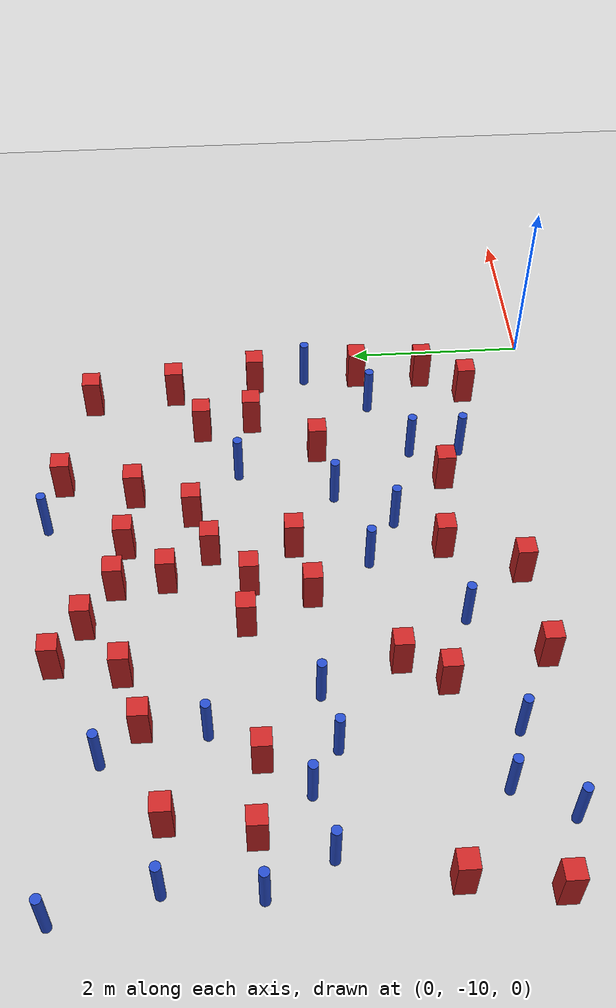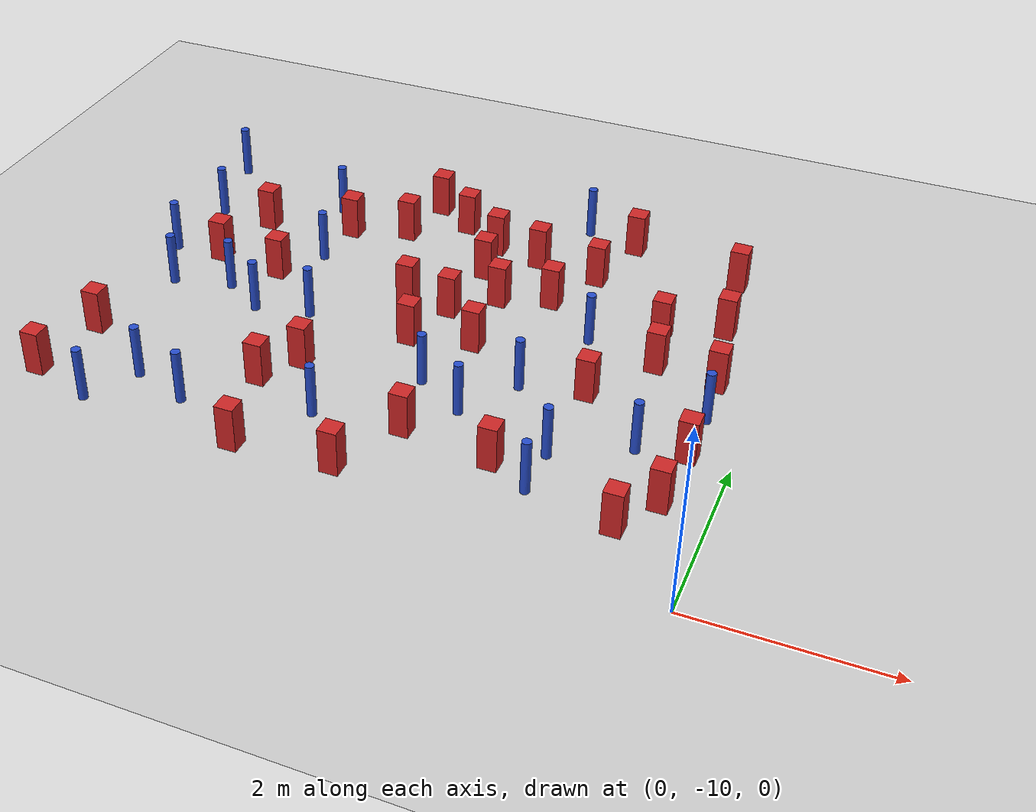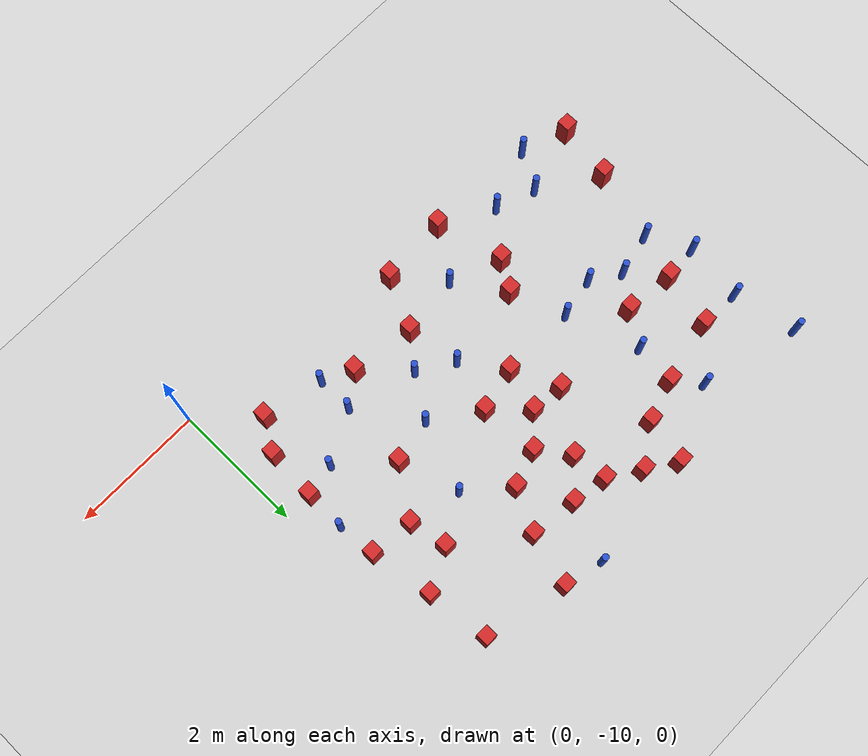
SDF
<sdf version="1.6">
 <world name="default">
  <model name="ground_plane">
   <static>1</static>
   <link name="link">
    <collision name="collision">
     <geometry><plane><normal>0 0 1</normal><size>100 100</size></plane></geometry>
     <surface><friction><ode><mu>100</mu><mu2>50</mu2></ode></friction></surface>
    </collision>
    <visual name="visual">
     <cast_shadows>0</cast_shadows>
     <geometry><plane><normal>0 0 1</normal><size>100 100</size></plane></geometry>
     <material>
      <ambient>1.0 1.0 1.0 1.0</ambient>
      <diffuse>0.8 0.8 0.8 1.0</diffuse>
      <specular>0.01 0.01 0.01 1.000000</specular>
     </material>
    </visual>
   </link>
  </model>
  <model name="pole_obstacle0">
   <static>true</static>
   <pose>-6.29073102385 -9.41656100264 2.88873142074e-08 -9.9053668967e-09 4.60219948993e-07 -1.20965994957e-07</pose>
   <link name="link">
    <pose>0 0 0.3 0 -0 0</pose>
    <inertial>
     <mass>1</mass>
     <inertia><ixx>0.145833</ixx><ixy>0</ixy><ixz>0</ixz><iyy>0.145833</iyy><iyz>0</iyz><izz>0.125</izz></inertia>
    </inertial>
    <collision name="collision">
     <geometry><cylinder><radius>0.05</radius><length>.6</length></cylinder></geometry>
    </collision>
    <visual name="visual">
     <geometry><cylinder><radius>0.05</radius><length>.6</length></cylinder></geometry>
     <material>
      <script><name>Gazebo/Blue</name><uri>file://media/materials/scripts/gazebo.material</uri></script>
     </material>
    </visual>
   </link>
  </model>
  <model name="pole_obstacle5">
   <static>true</static>
   <pose>-6.77612854679 -5.65401270305 2.88873142074e-08 -9.90536690842e-09 4.60219948965e-07 -1.20965994976e-07</pose>
   <link name="link">
    <pose>0 0 0.3 0 -0 0</pose>
    <inertial>
     <mass>1</mass>
     <inertia><ixx>0.145833</ixx><ixy>0</ixy><ixz>0</ixz><iyy>0.145833</iyy><iyz>0</iyz><izz>0.125</izz></inertia>
    </inertial>
    <collision name="collision">
     <geometry><cylinder><radius>0.05</radius><length>.6</length></cylinder></geometry>
    </collision>
    <visual name="visual">
     <geometry><cylinder><radius>0.05</radius><length>.6</length></cylinder></geometry>
     <material>
      <script><name>Gazebo/Blue</name><uri>file://media/materials/scripts/gazebo.material</uri></script>
     </material>
    </visual>
   </link>
  </model>
  <model name="pole_obstacle7">
   <static>true</static>
   <pose>-4.8611476765 -7.20057971057 2.88873142074e-08 -9.90536690842e-09 4.60219948965e-07 -1.20965994976e-07</pose>
   <link name="link">
    <pose>0 0 0.3 0 -0 0</pose>
    <inertial>
     <mass>1</mass>
     <inertia><ixx>0.145833</ixx><ixy>0</ixy><ixz>0</ixz><iyy>0.145833</iyy><iyz>0</iyz><izz>0.125</izz></inertia>
    </inertial>
    <collision name="collision">
     <geometry><cylinder><radius>0.05</radius><length>.6</length></cylinder></geometry>
    </collision>
    <visual name="visual">
     <geometry><cylinder><radius>0.05</radius><length>.6</length></cylinder></geometry>
     <material>
      <script><name>Gazebo/Blue</name><uri>file://media/materials/scripts/gazebo.material</uri></script>
     </material>
    </visual>
   </link>
  </model>
  <model name="square_post_obstacle17">
   <static>true</static>
   <pose>-1.99308941431 -4.56130783351 8.22691968438e-08 7.2212513382e-06 -7.54495500217e-07 2.29674213826e-05</pose>
   <link name="link">
    <pose>0 0 0.25 0 -0 0</pose>
    <inertial>
     <mass>100</mass>
     <inertia>
      <ixx>0.166667</ixx>
      <ixy>0</ixy>
      <ixz>0</ixz>
      <iyy>0.166667</iyy>
      <iyz>0</iyz>
      <izz>0.166667</izz>
     </inertia>
    </inertial>
    <collision name="collision"><geometry><box><size>.2 .2 .5</size></box></geometry></collision>
    <visual name="visual">
     <geometry><box><size>.2 .2 .5</size></box></geometry>
     <material>
      <script><name>Gazebo/Red</name><uri>file://media/materials/scripts/gazebo.material</uri></script>
     </material>
    </visual>
   </link>
  </model>
  <model name="square_post_obstacle21">
   <static>true</static>
   <pose>-0.484145209012 -8.73225161727 8.22691968438e-08 7.22125133819e-06 -7.54495500217e-07 2.29674213826e-05</pose>
   <link name="link">
    <pose>0 0 0.25 0 -0 0</pose>
    <inertial>
     <mass>100</mass>
     <inertia>
      <ixx>0.166667</ixx>
      <ixy>0</ixy>
      <ixz>0</ixz>
      <iyy>0.166667</iyy>
      <iyz>0</iyz>
      <izz>0.166667</izz>
     </inertia>
    </inertial>
    <collision name="collision"><geometry><box><size>.2 .2 .5</size></box></geometry></collision>
    <visual name="visual">
     <geometry><box><size>.2 .2 .5</size></box></geometry>
     <material>
      <script><name>Gazebo/Red</name><uri>file://media/materials/scripts/gazebo.material</uri></script>
     </material>
    </visual>
   </link>
  </model>
  <model name="pole_obstacle30">
   <static>true</static>
   <pose>-5.4791398422 -5.07729649423 2.88873142074e-08 -9.90536690842e-09 4.60219948965e-07 -1.20965994976e-07</pose>
   <link name="link">
    <pose>0 0 0.3 0 -0 0</pose>
    <inertial>
     <mass>1</mass>
     <inertia><ixx>0.145833</ixx><ixy>0</ixy><ixz>0</ixz><iyy>0.145833</iyy><iyz>0</iyz><izz>0.125</izz></inertia>
    </inertial>
    <collision name="collision">
     <geometry><cylinder><radius>0.05</radius><length>.6</length></cylinder></geometry>
    </collision>
    <visual name="visual">
     <geometry><cylinder><radius>0.05</radius><length>.6</length></cylinder></geometry>
     <material>
      <script><name>Gazebo/Blue</name><uri>file://media/materials/scripts/gazebo.material</uri></script>
     </material>
    </visual>
   </link>
  </model>
  <model name="pole_obstacle50">
   <static>true</static>
   <pose>-5.46237026579 -7.31988556952 2.88873142074e-08 -9.90536690842e-09 4.60219948965e-07 -1.20965994976e-07</pose>
   <link name="link">
    <pose>0 0 0.3 0 -0 0</pose>
    <inertial>
     <mass>1</mass>
     <inertia><ixx>0.145833</ixx><ixy>0</ixy><ixz>0</ixz><iyy>0.145833</iyy><iyz>0</iyz><izz>0.125</izz></inertia>
    </inertial>
    <collision name="collision">
     <geometry><cylinder><radius>0.05</radius><length>.6</length></cylinder></geometry>
    </collision>
    <visual name="visual">
     <geometry><cylinder><radius>0.05</radius><length>.6</length></cylinder></geometry>
     <material>
      <script><name>Gazebo/Blue</name><uri>file://media/materials/scripts/gazebo.material</uri></script>
     </material>
    </visual>
   </link>
  </model>
  <model name="pole_obstacle57">
   <static>true</static>
   <pose>-5.23125611805 -6.09782086094 2.88873142074e-08 -9.90536690842e-09 4.60219948965e-07 -1.20965994976e-07</pose>
   <link name="link">
    <pose>0 0 0.3 0 -0 0</pose>
    <inertial>
     <mass>1</mass>
     <inertia><ixx>0.145833</ixx><ixy>0</ixy><ixz>0</ixz><iyy>0.145833</iyy><iyz>0</iyz><izz>0.125</izz></inertia>
    </inertial>
    <collision name="collision">
     <geometry><cylinder><radius>0.05</radius><length>.6</length></cylinder></geometry>
    </collision>
    <visual name="visual">
     <geometry><cylinder><radius>0.05</radius><length>.6</length></cylinder></geometry>
     <material>
      <script><name>Gazebo/Blue</name><uri>file://media/materials/scripts/gazebo.material</uri></script>
     </material>
    </visual>
   </link>
  </model>
  <model name="pole_obstacle59">
   <static>true</static>
   <pose>-0.418445965042 -7.34145498809 2.88873142074e-08 -9.90536689683e-09 4.60219948993e-07 -1.20965994957e-07</pose>
   <link name="link">
    <pose>0 0 0.3 0 -0 0</pose>
    <inertial>
     <mass>1</mass>
     <inertia><ixx>0.145833</ixx><ixy>0</ixy><ixz>0</ixz><iyy>0.145833</iyy><iyz>0</iyz><izz>0.125</izz></inertia>
    </inertial>
    <collision name="collision">
     <geometry><cylinder><radius>0.05</radius><length>.6</length></cylinder></geometry>
    </collision>
    <visual name="visual">
     <geometry><cylinder><radius>0.05</radius><length>.6</length></cylinder></geometry>
     <material>
      <script><name>Gazebo/Blue</name><uri>file://media/materials/scripts/gazebo.material</uri></script>
     </material>
    </visual>
   </link>
  </model>
  <model name="square_post_obstacle49">
   <static>true</static>
   <pose>-3.06312127579 -6.16454046251 8.22691968438e-08 7.2212513382e-06 -7.54495500217e-07 2.29674213826e-05</pose>
   <link name="link">
    <pose>0 0 0.25 0 -0 0</pose>
    <inertial>
     <mass>100</mass>
     <inertia>
      <ixx>0.166667</ixx>
      <ixy>0</ixy>
      <ixz>0</ixz>
      <iyy>0.166667</iyy>
      <iyz>0</iyz>
      <izz>0.166667</izz>
     </inertia>
    </inertial>
    <collision name="collision"><geometry><box><size>.2 .2 .5</size></box></geometry></collision>
    <visual name="visual">
     <geometry><box><size>.2 .2 .5</size></box></geometry>
     <material>
      <script><name>Gazebo/Red</name><uri>file://media/materials/scripts/gazebo.material</uri></script>
     </material>
    </visual>
   </link>
  </model>
  <model name="square_post_obstacle55">
   <static>true</static>
   <pose>-1.64114782729 -7.40068069484 8.22691968438e-08 7.2212513382e-06 -7.54495500217e-07 2.29674213826e-05</pose>
   <link name="link">
    <pose>0 0 0.25 0 -0 0</pose>
    <inertial>
     <mass>100</mass>
     <inertia>
      <ixx>0.166667</ixx>
      <ixy>0</ixy>
      <ixz>0</ixz>
      <iyy>0.166667</iyy>
      <iyz>0</iyz>
      <izz>0.166667</izz>
     </inertia>
    </inertial>
    <collision name="collision"><geometry><box><size>.2 .2 .5</size></box></geometry></collision>
    <visual name="visual">
     <geometry><box><size>.2 .2 .5</size></box></geometry>
     <material>
      <script><name>Gazebo/Red</name><uri>file://media/materials/scripts/gazebo.material</uri></script>
     </material>
    </visual>
   </link>
  </model>
  <model name="square_post_obstacle62">
   <static>true</static>
   <pose>-4.53002099947 -5.26884477887 8.22691968438e-08 7.2212513382e-06 -7.54495500217e-07 2.29674213826e-05</pose>
   <link name="link">
    <pose>0 0 0.25 0 -0 0</pose>
    <inertial>
     <mass>100</mass>
     <inertia>
      <ixx>0.166667</ixx>
      <ixy>0</ixy>
      <ixz>0</ixz>
      <iyy>0.166667</iyy>
      <iyz>0</iyz>
      <izz>0.166667</izz>
     </inertia>
    </inertial>
    <collision name="collision"><geometry><box><size>.2 .2 .5</size></box></geometry></collision>
    <visual name="visual">
     <geometry><box><size>.2 .2 .5</size></box></geometry>
     <material>
      <script><name>Gazebo/Red</name><uri>file://media/materials/scripts/gazebo.material</uri></script>
     </material>
    </visual>
   </link>
  </model>
  <model name="square_post_obstacle67">
   <static>true</static>
   <pose>-0.622892252882 -5.79786922547 8.22691968438e-08 7.2212513382e-06 -7.54495500217e-07 2.29674213826e-05</pose>
   <link name="link">
    <pose>0 0 0.25 0 -0 0</pose>
    <inertial>
     <mass>100</mass>
     <inertia>
      <ixx>0.166667</ixx>
      <ixy>0</ixy>
      <ixz>0</ixz>
      <iyy>0.166667</iyy>
      <iyz>0</iyz>
      <izz>0.166667</izz>
     </inertia>
    </inertial>
    <collision name="collision"><geometry><box><size>.2 .2 .5</size></box></geometry></collision>
    <visual name="visual">
     <geometry><box><size>.2 .2 .5</size></box></geometry>
     <material>
      <script><name>Gazebo/Red</name><uri>file://media/materials/scripts/gazebo.material</uri></script>
     </material>
    </visual>
   </link>
  </model>
  <model name="square_post_obstacle68">
   <static>true</static>
   <pose>-2.51993758661 -5.97998340091 8.22691968438e-08 7.2212513382e-06 -7.54495500217e-07 2.29674213826e-05</pose>
   <link name="link">
    <pose>0 0 0.25 0 -0 0</pose>
    <inertial>
     <mass>100</mass>
     <inertia>
      <ixx>0.166667</ixx>
      <ixy>0</ixy>
      <ixz>0</ixz>
      <iyy>0.166667</iyy>
      <iyz>0</iyz>
      <izz>0.166667</izz>
     </inertia>
    </inertial>
    <collision name="collision"><geometry><box><size>.2 .2 .5</size></box></geometry></collision>
    <visual name="visual">
     <geometry><box><size>.2 .2 .5</size></box></geometry>
     <material>
      <script><name>Gazebo/Red</name><uri>file://media/materials/scripts/gazebo.material</uri></script>
     </material>
    </visual>
   </link>
  </model>
  <model name="pole_obstacle81">
   <static>true</static>
   <pose>-1.69824594226 -9.0235837593 2.88873142074e-08 -9.90536690474e-09 4.60219948974e-07 -1.2096599497e-07</pose>
   <link name="link">
    <pose>0 0 0.3 0 -0 0</pose>
    <inertial>
     <mass>1</mass>
     <inertia><ixx>0.145833</ixx><ixy>0</ixy><ixz>0</ixz><iyy>0.145833</iyy><iyz>0</iyz><izz>0.125</izz></inertia>
    </inertial>
    <collision name="collision">
     <geometry><cylinder><radius>0.05</radius><length>.6</length></cylinder></geometry>
    </collision>
    <visual name="visual">
     <geometry><cylinder><radius>0.05</radius><length>.6</length></cylinder></geometry>
     <material>
      <script><name>Gazebo/Blue</name><uri>file://media/materials/scripts/gazebo.material</uri></script>
     </material>
    </visual>
   </link>
  </model>
  <model name="square_post_obstacle71">
   <static>true</static>
   <pose>-6.31438875868 -6.52037185563 8.22691968438e-08 7.2212513382e-06 -7.54495500217e-07 2.29674213826e-05</pose>
   <link name="link">
    <pose>0 0 0.25 0 -0 0</pose>
    <inertial>
     <mass>100</mass>
     <inertia>
      <ixx>0.166667</ixx>
      <ixy>0</ixy>
      <ixz>0</ixz>
      <iyy>0.166667</iyy>
      <iyz>0</iyz>
      <izz>0.166667</izz>
     </inertia>
    </inertial>
    <collision name="collision"><geometry><box><size>.2 .2 .5</size></box></geometry></collision>
    <visual name="visual">
     <geometry><box><size>.2 .2 .5</size></box></geometry>
     <material>
      <script><name>Gazebo/Red</name><uri>file://media/materials/scripts/gazebo.material</uri></script>
     </material>
    </visual>
   </link>
  </model>
  <model name="pole_obstacle83">
   <static>true</static>
   <pose>-1.68898242239 -8.4609062374 2.88873142074e-08 -9.90536690474e-09 4.60219948974e-07 -1.2096599497e-07</pose>
   <link name="link">
    <pose>0 0 0.3 0 -0 0</pose>
    <inertial>
     <mass>1</mass>
     <inertia><ixx>0.145833</ixx><ixy>0</ixy><ixz>0</ixz><iyy>0.145833</iyy><iyz>0</iyz><izz>0.125</izz></inertia>
    </inertial>
    <collision name="collision">
     <geometry><cylinder><radius>0.05</radius><length>.6</length></cylinder></geometry>
    </collision>
    <visual name="visual">
     <geometry><cylinder><radius>0.05</radius><length>.6</length></cylinder></geometry>
     <material>
      <script><name>Gazebo/Blue</name><uri>file://media/materials/scripts/gazebo.material</uri></script>
     </material>
    </visual>
   </link>
  </model>
  <model name="square_post_obstacle81">
   <static>true</static>
   <pose>-0.735373230694 -4.84732503694 8.22691968438e-08 7.2212513382e-06 -7.54495500217e-07 2.29674213826e-05</pose>
   <link name="link">
    <pose>0 0 0.25 0 -0 0</pose>
    <inertial>
     <mass>100</mass>
     <inertia>
      <ixx>0.166667</ixx>
      <ixy>0</ixy>
      <ixz>0</ixz>
      <iyy>0.166667</iyy>
      <iyz>0</iyz>
      <izz>0.166667</izz>
     </inertia>
    </inertial>
    <collision name="collision"><geometry><box><size>.2 .2 .5</size></box></geometry></collision>
    <visual name="visual">
     <geometry><box><size>.2 .2 .5</size></box></geometry>
     <material>
      <script><name>Gazebo/Red</name><uri>file://media/materials/scripts/gazebo.material</uri></script>
     </material>
    </visual>
   </link>
  </model>
  <model name="pole_obstacle91">
   <static>true</static>
   <pose>-6.55088212023 -7.19299175818 2.88873142074e-08 -9.90536690842e-09 4.60219948965e-07 -1.20965994976e-07</pose>
   <link name="link">
    <pose>0 0 0.3 0 -0 0</pose>
    <inertial>
     <mass>1</mass>
     <inertia><ixx>0.145833</ixx><ixy>0</ixy><ixz>0</ixz><iyy>0.145833</iyy><iyz>0</iyz><izz>0.125</izz></inertia>
    </inertial>
    <collision name="collision">
     <geometry><cylinder><radius>0.05</radius><length>.6</length></cylinder></geometry>
    </collision>
    <visual name="visual">
     <geometry><cylinder><radius>0.05</radius><length>.6</length></cylinder></geometry>
     <material>
      <script><name>Gazebo/Blue</name><uri>file://media/materials/scripts/gazebo.material</uri></script>
     </material>
    </visual>
   </link>
  </model>
  <model name="square_post_obstacle85">
   <static>true</static>
   <pose>-3.46423180402 -5.17242783229 8.22691968438e-08 7.2212513382e-06 -7.54495500217e-07 2.29674213826e-05</pose>
   <link name="link">
    <pose>0 0 0.25 0 -0 0</pose>
    <inertial>
     <mass>100</mass>
     <inertia>
      <ixx>0.166667</ixx>
      <ixy>0</ixy>
      <ixz>0</ixz>
      <iyy>0.166667</iyy>
      <iyz>0</iyz>
      <izz>0.166667</izz>
     </inertia>
    </inertial>
    <collision name="collision"><geometry><box><size>.2 .2 .5</size></box></geometry></collision>
    <visual name="visual">
     <geometry><box><size>.2 .2 .5</size></box></geometry>
     <material>
      <script><name>Gazebo/Red</name><uri>file://media/materials/scripts/gazebo.material</uri></script>
     </material>
    </visual>
   </link>
  </model>
  <model name="pole_obstacle92">
   <static>true</static>
   <pose>-1.9193842892 -6.5033477845 2.88873142074e-08 -9.90536689852e-09 4.60219948989e-07 -1.2096599496e-07</pose>
   <link name="link">
    <pose>0 0 0.3 0 -0 0</pose>
    <inertial>
     <mass>1</mass>
     <inertia><ixx>0.145833</ixx><ixy>0</ixy><ixz>0</ixz><iyy>0.145833</iyy><iyz>0</iyz><izz>0.125</izz></inertia>
    </inertial>
    <collision name="collision">
     <geometry><cylinder><radius>0.05</radius><length>.6</length></cylinder></geometry>
    </collision>
    <visual name="visual">
     <geometry><cylinder><radius>0.05</radius><length>.6</length></cylinder></geometry>
     <material>
      <script><name>Gazebo/Blue</name><uri>file://media/materials/scripts/gazebo.material</uri></script>
     </material>
    </visual>
   </link>
  </model>
  <model name="square_post_obstacle93">
   <static>true</static>
   <pose>-1.13325996723 -6.67975821291 8.22691968438e-08 7.2212513382e-06 -7.54495500217e-07 2.29674213826e-05</pose>
   <link name="link">
    <pose>0 0 0.25 0 -0 0</pose>
    <inertial>
     <mass>100</mass>
     <inertia>
      <ixx>0.166667</ixx>
      <ixy>0</ixy>
      <ixz>0</ixz>
      <iyy>0.166667</iyy>
      <iyz>0</iyz>
      <izz>0.166667</izz>
     </inertia>
    </inertial>
    <collision name="collision"><geometry><box><size>.2 .2 .5</size></box></geometry></collision>
    <visual name="visual">
     <geometry><box><size>.2 .2 .5</size></box></geometry>
     <material>
      <script><name>Gazebo/Red</name><uri>file://media/materials/scripts/gazebo.material</uri></script>
     </material>
    </visual>
   </link>
  </model>
  <model name="pole_obstacle103">
   <static>true</static>
   <pose>-5.36653281335 -9.06848927768 2.88873142074e-08 -9.9053668967e-09 4.60219948993e-07 -1.20965994957e-07</pose>
   <link name="link">
    <pose>0 0 0.3 0 -0 0</pose>
    <inertial>
     <mass>1</mass>
     <inertia><ixx>0.145833</ixx><ixy>0</ixy><ixz>0</ixz><iyy>0.145833</iyy><iyz>0</iyz><izz>0.125</izz></inertia>
    </inertial>
    <collision name="collision">
     <geometry><cylinder><radius>0.05</radius><length>.6</length></cylinder></geometry>
    </collision>
    <visual name="visual">
     <geometry><cylinder><radius>0.05</radius><length>.6</length></cylinder></geometry>
     <material>
      <script><name>Gazebo/Blue</name><uri>file://media/materials/scripts/gazebo.material</uri></script>
     </material>
    </visual>
   </link>
  </model>
  <model name="square_post_obstacle99">
   <static>true</static>
   <pose>-2.92409832738 -5.26188851214 8.22691968438e-08 7.22125133819e-06 -7.54495500217e-07 2.29674213826e-05</pose>
   <link name="link">
    <pose>0 0 0.25 0 -0 0</pose>
    <inertial>
     <mass>100</mass>
     <inertia>
      <ixx>0.166667</ixx>
      <ixy>0</ixy>
      <ixz>0</ixz>
      <iyy>0.166667</iyy>
      <iyz>0</iyz>
      <izz>0.166667</izz>
     </inertia>
    </inertial>
    <collision name="collision"><geometry><box><size>.2 .2 .5</size></box></geometry></collision>
    <visual name="visual">
     <geometry><box><size>.2 .2 .5</size></box></geometry>
     <material>
      <script><name>Gazebo/Red</name><uri>file://media/materials/scripts/gazebo.material</uri></script>
     </material>
    </visual>
   </link>
  </model>
  <model name="pole_obstacle111">
   <static>true</static>
   <pose>-4.0502593957 -8.75332816212 2.88873142074e-08 -9.9053668967e-09 4.60219948993e-07 -1.20965994957e-07</pose>
   <link name="link">
    <pose>0 0 0.3 0 -0 0</pose>
    <inertial>
     <mass>1</mass>
     <inertia><ixx>0.145833</ixx><ixy>0</ixy><ixz>0</ixz><iyy>0.145833</iyy><iyz>0</iyz><izz>0.125</izz></inertia>
    </inertial>
    <collision name="collision">
     <geometry><cylinder><radius>0.05</radius><length>.6</length></cylinder></geometry>
    </collision>
    <visual name="visual">
     <geometry><cylinder><radius>0.05</radius><length>.6</length></cylinder></geometry>
     <material>
      <script><name>Gazebo/Blue</name><uri>file://media/materials/scripts/gazebo.material</uri></script>
     </material>
    </visual>
   </link>
  </model>
  <model name="square_post_obstacle116">
   <static>true</static>
   <pose>-3.01341885197 -7.05202890822 8.22691968438e-08 7.2212513382e-06 -7.54495500217e-07 2.29674213826e-05</pose>
   <link name="link">
    <pose>0 0 0.25 0 -0 0</pose>
    <inertial>
     <mass>100</mass>
     <inertia>
      <ixx>0.166667</ixx>
      <ixy>0</ixy>
      <ixz>0</ixz>
      <iyy>0.166667</iyy>
      <iyz>0</iyz>
      <izz>0.166667</izz>
     </inertia>
    </inertial>
    <collision name="collision"><geometry><box><size>.2 .2 .5</size></box></geometry></collision>
    <visual name="visual">
     <geometry><box><size>.2 .2 .5</size></box></geometry>
     <material>
      <script><name>Gazebo/Red</name><uri>file://media/materials/scripts/gazebo.material</uri></script>
     </material>
    </visual>
   </link>
  </model>
  <model name="square_post_obstacle119">
   <static>true</static>
   <pose>-0.468756562765 -6.74823517555 8.22691968438e-08 7.22125133819e-06 -7.54495500217e-07 2.29674213826e-05</pose>
   <link name="link">
    <pose>0 0 0.25 0 -0 0</pose>
    <inertial>
     <mass>100</mass>
     <inertia>
      <ixx>0.166667</ixx>
      <ixy>0</ixy>
      <ixz>0</ixz>
      <iyy>0.166667</iyy>
      <iyz>0</iyz>
      <izz>0.166667</izz>
     </inertia>
    </inertial>
    <collision name="collision"><geometry><box><size>.2 .2 .5</size></box></geometry></collision>
    <visual name="visual">
     <geometry><box><size>.2 .2 .5</size></box></geometry>
     <material>
      <script><name>Gazebo/Red</name><uri>file://media/materials/scripts/gazebo.material</uri></script>
     </material>
    </visual>
   </link>
  </model>
  <model name="square_post_obstacle121">
   <static>true</static>
   <pose>-3.11852874004 -8.64205245316 8.22691968438e-08 7.22125133819e-06 -7.54495500217e-07 2.29674213826e-05</pose>
   <link name="link">
    <pose>0 0 0.25 0 -0 0</pose>
    <inertial>
     <mass>100</mass>
     <inertia>
      <ixx>0.166667</ixx>
      <ixy>0</ixy>
      <ixz>0</ixz>
      <iyy>0.166667</iyy>
      <iyz>0</iyz>
      <izz>0.166667</izz>
     </inertia>
    </inertial>
    <collision name="collision"><geometry><box><size>.2 .2 .5</size></box></geometry></collision>
    <visual name="visual">
     <geometry><box><size>.2 .2 .5</size></box></geometry>
     <material>
      <script><name>Gazebo/Red</name><uri>file://media/materials/scripts/gazebo.material</uri></script>
     </material>
    </visual>
   </link>
  </model>
  <model name="pole_obstacle124">
   <static>true</static>
   <pose>-3.2590227834 -7.83962579985 2.88873142074e-08 -9.90536692062e-09 4.60219948937e-07 -1.20965994985e-07</pose>
   <link name="link">
    <pose>0 0 0.3 0 -0 0</pose>
    <inertial>
     <mass>1</mass>
     <inertia><ixx>0.145833</ixx><ixy>0</ixy><ixz>0</ixz><iyy>0.145833</iyy><iyz>0</iyz><izz>0.125</izz></inertia>
    </inertial>
    <collision name="collision">
     <geometry><cylinder><radius>0.05</radius><length>.6</length></cylinder></geometry>
    </collision>
    <visual name="visual">
     <geometry><cylinder><radius>0.05</radius><length>.6</length></cylinder></geometry>
     <material>
      <script><name>Gazebo/Blue</name><uri>file://media/materials/scripts/gazebo.material</uri></script>
     </material>
    </visual>
   </link>
  </model>
  <model name="square_post_obstacle123">
   <static>true</static>
   <pose>-3.49625539113 -9.41938471389 8.22691968438e-08 7.22125133819e-06 -7.54495500217e-07 2.29674213826e-05</pose>
   <link name="link">
    <pose>0 0 0.25 0 -0 0</pose>
    <inertial>
     <mass>100</mass>
     <inertia>
      <ixx>0.166667</ixx>
      <ixy>0</ixy>
      <ixz>0</ixz>
      <iyy>0.166667</iyy>
      <iyz>0</iyz>
      <izz>0.166667</izz>
     </inertia>
    </inertial>
    <collision name="collision"><geometry><box><size>.2 .2 .5</size></box></geometry></collision>
    <visual name="visual">
     <geometry><box><size>.2 .2 .5</size></box></geometry>
     <material>
      <script><name>Gazebo/Red</name><uri>file://media/materials/scripts/gazebo.material</uri></script>
     </material>
    </visual>
   </link>
  </model>
  <model name="square_post_obstacle127">
   <static>true</static>
   <pose>-4.55464213423 -9.48271875091 8.22691968438e-08 7.22125133819e-06 -7.54495500217e-07 2.29674213826e-05</pose>
   <link name="link">
    <pose>0 0 0.25 0 -0 0</pose>
    <inertial>
     <mass>100</mass>
     <inertia>
      <ixx>0.166667</ixx>
      <ixy>0</ixy>
      <ixz>0</ixz>
      <iyy>0.166667</iyy>
      <iyz>0</iyz>
      <izz>0.166667</izz>
     </inertia>
    </inertial>
    <collision name="collision"><geometry><box><size>.2 .2 .5</size></box></geometry></collision>
    <visual name="visual">
     <geometry><box><size>.2 .2 .5</size></box></geometry>
     <material>
      <script><name>Gazebo/Red</name><uri>file://media/materials/scripts/gazebo.material</uri></script>
     </material>
    </visual>
   </link>
  </model>
  <model name="square_post_obstacle133">
   <static>true</static>
   <pose>-0.777890849978 -9.20719937548 8.22691968438e-08 7.22125133819e-06 -7.54495500217e-07 2.29674213826e-05</pose>
   <link name="link">
    <pose>0 0 0.25 0 -0 0</pose>
    <inertial>
     <mass>100</mass>
     <inertia>
      <ixx>0.166667</ixx>
      <ixy>0</ixy>
      <ixz>0</ixz>
      <iyy>0.166667</iyy>
      <iyz>0</iyz>
      <izz>0.166667</izz>
     </inertia>
    </inertial>
    <collision name="collision"><geometry><box><size>.2 .2 .5</size></box></geometry></collision>
    <visual name="visual">
     <geometry><box><size>.2 .2 .5</size></box></geometry>
     <material>
      <script><name>Gazebo/Red</name><uri>file://media/materials/scripts/gazebo.material</uri></script>
     </material>
    </visual>
   </link>
  </model>
  <model name="square_post_obstacle138">
   <static>true</static>
   <pose>-4.538817985 -8.01944577597 8.22691968438e-08 7.2212513382e-06 -7.54495500217e-07 2.29674213826e-05</pose>
   <link name="link">
    <pose>0 0 0.25 0 -0 0</pose>
    <inertial>
     <mass>100</mass>
     <inertia>
      <ixx>0.166667</ixx>
      <ixy>0</ixy>
      <ixz>0</ixz>
      <iyy>0.166667</iyy>
      <iyz>0</iyz>
      <izz>0.166667</izz>
     </inertia>
    </inertial>
    <collision name="collision"><geometry><box><size>.2 .2 .5</size></box></geometry></collision>
    <visual name="visual">
     <geometry><box><size>.2 .2 .5</size></box></geometry>
     <material>
      <script><name>Gazebo/Red</name><uri>file://media/materials/scripts/gazebo.material</uri></script>
     </material>
    </visual>
   </link>
  </model>
  <model name="square_post_obstacle139">
   <static>true</static>
   <pose>-6.13318079136 -5.68081853286 8.22691968438e-08 7.22125133819e-06 -7.54495500217e-07 2.29674213826e-05</pose>
   <link name="link">
    <pose>0 0 0.25 0 -0 0</pose>
    <inertial>
     <mass>100</mass>
     <inertia>
      <ixx>0.166667</ixx>
      <ixy>0</ixy>
      <ixz>0</ixz>
      <iyy>0.166667</iyy>
      <iyz>0</iyz>
      <izz>0.166667</izz>
     </inertia>
    </inertial>
    <collision name="collision"><geometry><box><size>.2 .2 .5</size></box></geometry></collision>
    <visual name="visual">
     <geometry><box><size>.2 .2 .5</size></box></geometry>
     <material>
      <script><name>Gazebo/Red</name><uri>file://media/materials/scripts/gazebo.material</uri></script>
     </material>
    </visual>
   </link>
  </model>
  <model name="pole_obstacle149">
   <static>true</static>
   <pose>-5.91405965367 -7.04005609515 2.88873142074e-08 -9.90536690842e-09 4.60219948965e-07 -1.20965994976e-07</pose>
   <link name="link">
    <pose>0 0 0.3 0 -0 0</pose>
    <inertial>
     <mass>1</mass>
     <inertia><ixx>0.145833</ixx><ixy>0</ixy><ixz>0</ixz><iyy>0.145833</iyy><iyz>0</iyz><izz>0.125</izz></inertia>
    </inertial>
    <collision name="collision">
     <geometry><cylinder><radius>0.05</radius><length>.6</length></cylinder></geometry>
    </collision>
    <visual name="visual">
     <geometry><cylinder><radius>0.05</radius><length>.6</length></cylinder></geometry>
     <material>
      <script><name>Gazebo/Blue</name><uri>file://media/materials/scripts/gazebo.material</uri></script>
     </material>
    </visual>
   </link>
  </model>
  <model name="square_post_obstacle145">
   <static>true</static>
   <pose>-5.15869156888 -5.46544525878 8.22691968438e-08 7.22125133819e-06 -7.54495500217e-07 2.29674213826e-05</pose>
   <link name="link">
    <pose>0 0 0.25 0 -0 0</pose>
    <inertial>
     <mass>100</mass>
     <inertia>
      <ixx>0.166667</ixx>
      <ixy>0</ixy>
      <ixz>0</ixz>
      <iyy>0.166667</iyy>
      <iyz>0</iyz>
      <izz>0.166667</izz>
     </inertia>
    </inertial>
    <collision name="collision"><geometry><box><size>.2 .2 .5</size></box></geometry></collision>
    <visual name="visual">
     <geometry><box><size>.2 .2 .5</size></box></geometry>
     <material>
      <script><name>Gazebo/Red</name><uri>file://media/materials/scripts/gazebo.material</uri></script>
     </material>
    </visual>
   </link>
  </model>
  <model name="square_post_obstacle150">
   <static>true</static>
   <pose>-2.14066113726 -8.78282673287 8.22691968438e-08 7.22125133819e-06 -7.54495500217e-07 2.29674213826e-05</pose>
   <link name="link">
    <pose>0 0 0.25 0 -0 0</pose>
    <inertial>
     <mass>100</mass>
     <inertia>
      <ixx>0.166667</ixx>
      <ixy>0</ixy>
      <ixz>0</ixz>
      <iyy>0.166667</iyy>
      <iyz>0</iyz>
      <izz>0.166667</izz>
     </inertia>
    </inertial>
    <collision name="collision"><geometry><box><size>.2 .2 .5</size></box></geometry></collision>
    <visual name="visual">
     <geometry><box><size>.2 .2 .5</size></box></geometry>
     <material>
      <script><name>Gazebo/Red</name><uri>file://media/materials/scripts/gazebo.material</uri></script>
     </material>
    </visual>
   </link>
  </model>
  <model name="square_post_obstacle151">
   <static>true</static>
   <pose>-3.68180055198 -7.202479845 8.22691968438e-08 7.22125133819e-06 -7.54495500217e-07 2.29674213826e-05</pose>
   <link name="link">
    <pose>0 0 0.25 0 -0 0</pose>
    <inertial>
     <mass>100</mass>
     <inertia>
      <ixx>0.166667</ixx>
      <ixy>0</ixy>
      <ixz>0</ixz>
      <iyy>0.166667</iyy>
      <iyz>0</iyz>
      <izz>0.166667</izz>
     </inertia>
    </inertial>
    <collision name="collision"><geometry><box><size>.2 .2 .5</size></box></geometry></collision>
    <visual name="visual">
     <geometry><box><size>.2 .2 .5</size></box></geometry>
     <material>
      <script><name>Gazebo/Red</name><uri>file://media/materials/scripts/gazebo.material</uri></script>
     </material>
    </visual>
   </link>
  </model>
  <model name="pole_obstacle159">
   <static>true</static>
   <pose>-2.31556478736 -7.54525956812 2.88873142074e-08 -9.90536689859e-09 4.60219948989e-07 -1.20965994961e-07</pose>
   <link name="link">
    <pose>0 0 0.3 0 -0 0</pose>
    <inertial>
     <mass>1</mass>
     <inertia><ixx>0.145833</ixx><ixy>0</ixy><ixz>0</ixz><iyy>0.145833</iyy><iyz>0</iyz><izz>0.125</izz></inertia>
    </inertial>
    <collision name="collision">
     <geometry><cylinder><radius>0.05</radius><length>.6</length></cylinder></geometry>
    </collision>
    <visual name="visual">
     <geometry><cylinder><radius>0.05</radius><length>.6</length></cylinder></geometry>
     <material>
      <script><name>Gazebo/Blue</name><uri>file://media/materials/scripts/gazebo.material</uri></script>
     </material>
    </visual>
   </link>
  </model>
  <model name="pole_obstacle164">
   <static>true</static>
   <pose>-2.7267406567 -8.1647301927 2.88873142074e-08 -9.90536692318e-09 4.6021994893e-07 -1.20965994988e-07</pose>
   <link name="link">
    <pose>0 0 0.3 0 -0 0</pose>
    <inertial>
     <mass>1</mass>
     <inertia><ixx>0.145833</ixx><ixy>0</ixy><ixz>0</ixz><iyy>0.145833</iyy><iyz>0</iyz><izz>0.125</izz></inertia>
    </inertial>
    <collision name="collision">
     <geometry><cylinder><radius>0.05</radius><length>.6</length></cylinder></geometry>
    </collision>
    <visual name="visual">
     <geometry><cylinder><radius>0.05</radius><length>.6</length></cylinder></geometry>
     <material>
      <script><name>Gazebo/Blue</name><uri>file://media/materials/scripts/gazebo.material</uri></script>
     </material>
    </visual>
   </link>
  </model>
  <model name="square_post_obstacle157">
   <static>true</static>
   <pose>-5.54997785436 -6.59602189619 8.22691968438e-08 7.2212513382e-06 -7.54495500217e-07 2.29674213826e-05</pose>
   <link name="link">
    <pose>0 0 0.25 0 -0 0</pose>
    <inertial>
     <mass>100</mass>
     <inertia>
      <ixx>0.166667</ixx>
      <ixy>0</ixy>
      <ixz>0</ixz>
      <iyy>0.166667</iyy>
      <iyz>0</iyz>
      <izz>0.166667</izz>
     </inertia>
    </inertial>
    <collision name="collision"><geometry><box><size>.2 .2 .5</size></box></geometry></collision>
    <visual name="visual">
     <geometry><box><size>.2 .2 .5</size></box></geometry>
     <material>
      <script><name>Gazebo/Red</name><uri>file://media/materials/scripts/gazebo.material</uri></script>
     </material>
    </visual>
   </link>
  </model>
  <model name="square_post_obstacle159">
   <static>true</static>
   <pose>-4.00118179782 -6.51103358357 8.22691968438e-08 7.22125133819e-06 -7.54495500217e-07 2.29674213826e-05</pose>
   <link name="link">
    <pose>0 0 0.25 0 -0 0</pose>
    <inertial>
     <mass>100</mass>
     <inertia>
      <ixx>0.166667</ixx>
      <ixy>0</ixy>
      <ixz>0</ixz>
      <iyy>0.166667</iyy>
      <iyz>0</iyz>
      <izz>0.166667</izz>
     </inertia>
    </inertial>
    <collision name="collision"><geometry><box><size>.2 .2 .5</size></box></geometry></collision>
    <visual name="visual">
     <geometry><box><size>.2 .2 .5</size></box></geometry>
     <material>
      <script><name>Gazebo/Red</name><uri>file://media/materials/scripts/gazebo.material</uri></script>
     </material>
    </visual>
   </link>
  </model>
  <model name="pole_obstacle166">
   <static>true</static>
   <pose>-0.928365991288 -8.05668016547 2.88873142074e-08 -9.90536690779e-09 4.60219948967e-07 -1.20965994975e-07</pose>
   <link name="link">
    <pose>0 0 0.3 0 -0 0</pose>
    <inertial>
     <mass>1</mass>
     <inertia><ixx>0.145833</ixx><ixy>0</ixy><ixz>0</ixz><iyy>0.145833</iyy><iyz>0</iyz><izz>0.125</izz></inertia>
    </inertial>
    <collision name="collision">
     <geometry><cylinder><radius>0.05</radius><length>.6</length></cylinder></geometry>
    </collision>
    <visual name="visual">
     <geometry><cylinder><radius>0.05</radius><length>.6</length></cylinder></geometry>
     <material>
      <script><name>Gazebo/Blue</name><uri>file://media/materials/scripts/gazebo.material</uri></script>
     </material>
    </visual>
   </link>
  </model>
  <model name="square_post_obstacle168">
   <static>true</static>
   <pose>-3.4054438377 -5.70733138829 8.22691968438e-08 7.2212513382e-06 -7.54495500217e-07 2.29674213826e-05</pose>
   <link name="link">
    <pose>0 0 0.25 0 -0 0</pose>
    <inertial>
     <mass>100</mass>
     <inertia>
      <ixx>0.166667</ixx>
      <ixy>0</ixy>
      <ixz>0</ixz>
      <iyy>0.166667</iyy>
      <iyz>0</iyz>
      <izz>0.166667</izz>
     </inertia>
    </inertial>
    <collision name="collision"><geometry><box><size>.2 .2 .5</size></box></geometry></collision>
    <visual name="visual">
     <geometry><box><size>.2 .2 .5</size></box></geometry>
     <material>
      <script><name>Gazebo/Red</name><uri>file://media/materials/scripts/gazebo.material</uri></script>
     </material>
    </visual>
   </link>
  </model>
  <model name="pole_obstacle172">
   <static>true</static>
   <pose>-6.99474164923 -4.68128454794 2.88873142074e-08 -9.90536690842e-09 4.60219948965e-07 -1.20965994976e-07</pose>
   <link name="link">
    <pose>0 0 0.3 0 -0 0</pose>
    <inertial>
     <mass>1</mass>
     <inertia><ixx>0.145833</ixx><ixy>0</ixy><ixz>0</ixz><iyy>0.145833</iyy><iyz>0</iyz><izz>0.125</izz></inertia>
    </inertial>
    <collision name="collision">
     <geometry><cylinder><radius>0.05</radius><length>.6</length></cylinder></geometry>
    </collision>
    <visual name="visual">
     <geometry><cylinder><radius>0.05</radius><length>.6</length></cylinder></geometry>
     <material>
      <script><name>Gazebo/Blue</name><uri>file://media/materials/scripts/gazebo.material</uri></script>
     </material>
    </visual>
   </link>
  </model>
  <model name="square_post_obstacle172">
   <static>true</static>
   <pose>-4.38455783161 -4.58083764199 8.22691968438e-08 7.2212513382e-06 -7.54495500217e-07 2.29674213826e-05</pose>
   <link name="link">
    <pose>0 0 0.25 0 -0 0</pose>
    <inertial>
     <mass>100</mass>
     <inertia>
      <ixx>0.166667</ixx>
      <ixy>0</ixy>
      <ixz>0</ixz>
      <iyy>0.166667</iyy>
      <iyz>0</iyz>
      <izz>0.166667</izz>
     </inertia>
    </inertial>
    <collision name="collision"><geometry><box><size>.2 .2 .5</size></box></geometry></collision>
    <visual name="visual">
     <geometry><box><size>.2 .2 .5</size></box></geometry>
     <material>
      <script><name>Gazebo/Red</name><uri>file://media/materials/scripts/gazebo.material</uri></script>
     </material>
    </visual>
   </link>
  </model>
  <model name="pole_obstacle175">
   <static>true</static>
   <pose>-2.59342349495 -4.41224121773 2.88873142074e-08 -9.90536689859e-09 4.60219948989e-07 -1.20965994961e-07</pose>
   <link name="link">
    <pose>0 0 0.3 0 -0 0</pose>
    <inertial>
     <mass>1</mass>
     <inertia><ixx>0.145833</ixx><ixy>0</ixy><ixz>0</ixz><iyy>0.145833</iyy><iyz>0</iyz><izz>0.125</izz></inertia>
    </inertial>
    <collision name="collision">
     <geometry><cylinder><radius>0.05</radius><length>.6</length></cylinder></geometry>
    </collision>
    <visual name="visual">
     <geometry><cylinder><radius>0.05</radius><length>.6</length></cylinder></geometry>
     <material>
      <script><name>Gazebo/Blue</name><uri>file://media/materials/scripts/gazebo.material</uri></script>
     </material>
    </visual>
   </link>
  </model>
  <model name="square_post_obstacle178">
   <static>true</static>
   <pose>-3.93802006669 -4.87154962419 8.22691968438e-08 7.2212513382e-06 -7.54495500217e-07 2.29674213826e-05</pose>
   <link name="link">
    <pose>0 0 0.25 0 -0 0</pose>
    <inertial>
     <mass>100</mass>
     <inertia>
      <ixx>0.166667</ixx>
      <ixy>0</ixy>
      <ixz>0</ixz>
      <iyy>0.166667</iyy>
      <iyz>0</iyz>
      <izz>0.166667</izz>
     </inertia>
    </inertial>
    <collision name="collision"><geometry><box><size>.2 .2 .5</size></box></geometry></collision>
    <visual name="visual">
     <geometry><box><size>.2 .2 .5</size></box></geometry>
     <material>
      <script><name>Gazebo/Red</name><uri>file://media/materials/scripts/gazebo.material</uri></script>
     </material>
    </visual>
   </link>
  </model>
  <model name="pole_obstacle180">
   <static>true</static>
   <pose>-5.97294620487 -8.86142646661 2.88873142074e-08 -9.9053668967e-09 4.60219948993e-07 -1.20965994957e-07</pose>
   <link name="link">
    <pose>0 0 0.3 0 -0 0</pose>
    <inertial>
     <mass>1</mass>
     <inertia><ixx>0.145833</ixx><ixy>0</ixy><ixz>0</ixz><iyy>0.145833</iyy><iyz>0</iyz><izz>0.125</izz></inertia>
    </inertial>
    <collision name="collision">
     <geometry><cylinder><radius>0.05</radius><length>.6</length></cylinder></geometry>
    </collision>
    <visual name="visual">
     <geometry><cylinder><radius>0.05</radius><length>.6</length></cylinder></geometry>
     <material>
      <script><name>Gazebo/Blue</name><uri>file://media/materials/scripts/gazebo.material</uri></script>
     </material>
    </visual>
   </link>
  </model>
  <model name="square_post_obstacle185">
   <static>true</static>
   <pose>-6.98086348051 -9.16962277964 8.22691968438e-08 7.2212513382e-06 -7.54495500217e-07 2.29674213826e-05</pose>
   <link name="link">
    <pose>0 0 0.25 0 -0 0</pose>
    <inertial>
     <mass>100</mass>
     <inertia>
      <ixx>0.166667</ixx>
      <ixy>0</ixy>
      <ixz>0</ixz>
      <iyy>0.166667</iyy>
      <iyz>0</iyz>
      <izz>0.166667</izz>
     </inertia>
    </inertial>
    <collision name="collision"><geometry><box><size>.2 .2 .5</size></box></geometry></collision>
    <visual name="visual">
     <geometry><box><size>.2 .2 .5</size></box></geometry>
     <material>
      <script><name>Gazebo/Red</name><uri>file://media/materials/scripts/gazebo.material</uri></script>
     </material>
    </visual>
   </link>
  </model>
  <model name="square_post_obstacle189">
   <static>true</static>
   <pose>-6.83082929812 -8.2904379337 8.22691968438e-08 7.22125133819e-06 -7.54495500217e-07 2.29674213826e-05</pose>
   <link name="link">
    <pose>0 0 0.25 0 -0 0</pose>
    <inertial>
     <mass>100</mass>
     <inertia>
      <ixx>0.166667</ixx>
      <ixy>0</ixy>
      <ixz>0</ixz>
      <iyy>0.166667</iyy>
      <iyz>0</iyz>
      <izz>0.166667</izz>
     </inertia>
    </inertial>
    <collision name="collision"><geometry><box><size>.2 .2 .5</size></box></geometry></collision>
    <visual name="visual">
     <geometry><box><size>.2 .2 .5</size></box></geometry>
     <material>
      <script><name>Gazebo/Red</name><uri>file://media/materials/scripts/gazebo.material</uri></script>
     </material>
    </visual>
   </link>
  </model>
  <model name="pole_obstacle191">
   <static>true</static>
   <pose>-6.881084316 -6.55861279461 2.88873142074e-08 -9.90536690842e-09 4.60219948965e-07 -1.20965994976e-07</pose>
   <link name="link">
    <pose>0 0 0.3 0 -0 0</pose>
    <inertial>
     <mass>1</mass>
     <inertia><ixx>0.145833</ixx><ixy>0</ixy><ixz>0</ixz><iyy>0.145833</iyy><iyz>0</iyz><izz>0.125</izz></inertia>
    </inertial>
    <collision name="collision">
     <geometry><cylinder><radius>0.05</radius><length>.6</length></cylinder></geometry>
    </collision>
    <visual name="visual">
     <geometry><cylinder><radius>0.05</radius><length>.6</length></cylinder></geometry>
     <material>
      <script><name>Gazebo/Blue</name><uri>file://media/materials/scripts/gazebo.material</uri></script>
     </material>
    </visual>
   </link>
  </model>
  <model name="square_post_obstacle207">
   <static>true</static>
   <pose>-1.24256602566 -6.10743578825 8.22691968438e-08 7.2212513382e-06 -7.54495500217e-07 2.29674213826e-05</pose>
   <link name="link">
    <pose>0 0 0.25 0 -0 0</pose>
    <inertial>
     <mass>100</mass>
     <inertia>
      <ixx>0.166667</ixx>
      <ixy>0</ixy>
      <ixz>0</ixz>
      <iyy>0.166667</iyy>
      <iyz>0</iyz>
      <izz>0.166667</izz>
     </inertia>
    </inertial>
    <collision name="collision"><geometry><box><size>.2 .2 .5</size></box></geometry></collision>
    <visual name="visual">
     <geometry><box><size>.2 .2 .5</size></box></geometry>
     <material>
      <script><name>Gazebo/Red</name><uri>file://media/materials/scripts/gazebo.material</uri></script>
     </material>
    </visual>
   </link>
  </model>
  <model name="square_post_obstacle221">
   <static>true</static>
   <pose>-4.81147996738 -8.45042003534 8.22691968438e-08 7.22125133819e-06 -7.54495500217e-07 2.29674213826e-05</pose>
   <link name="link">
    <pose>0 0 0.25 0 -0 0</pose>
    <inertial>
     <mass>100</mass>
     <inertia>
      <ixx>0.166667</ixx>
      <ixy>0</ixy>
      <ixz>0</ixz>
      <iyy>0.166667</iyy>
      <iyz>0</iyz>
      <izz>0.166667</izz>
     </inertia>
    </inertial>
    <collision name="collision"><geometry><box><size>.2 .2 .5</size></box></geometry></collision>
    <visual name="visual">
     <geometry><box><size>.2 .2 .5</size></box></geometry>
     <material>
      <script><name>Gazebo/Red</name><uri>file://media/materials/scripts/gazebo.material</uri></script>
     </material>
    </visual>
   </link>
  </model>
  <model name="square_post_obstacle223">
   <static>true</static>
   <pose>-3.49100996738 -6.56029003534 8.22691968438e-08 7.2212513382e-06 -7.54495500217e-07 2.29674213826e-05</pose>
   <link name="link">
    <pose>0 0 0.25 0 -0 0</pose>
    <inertial>
     <mass>100</mass>
     <inertia>
      <ixx>0.166667</ixx>
      <ixy>0</ixy>
      <ixz>0</ixz>
      <iyy>0.166667</iyy>
      <iyz>0</iyz>
      <izz>0.166667</izz>
     </inertia>
    </inertial>
    <collision name="collision"><geometry><box><size>.2 .2 .5</size></box></geometry></collision>
    <visual name="visual">
     <geometry><box><size>.2 .2 .5</size></box></geometry>
     <material>
      <script><name>Gazebo/Red</name><uri>file://media/materials/scripts/gazebo.material</uri></script>
     </material>
    </visual>
   </link>
  </model>
  <model name="square_post_obstacle224">
   <static>true</static>
   <pose>-0.437406967378 -7.95966003534 8.22691968438e-08 7.2212513382e-06 -7.54495500217e-07 2.29674213826e-05</pose>
   <link name="link">
    <pose>0 0 0.25 0 -0 0</pose>
    <inertial>
     <mass>100</mass>
     <inertia>
      <ixx>0.166667</ixx>
      <ixy>0</ixy>
      <ixz>0</ixz>
      <iyy>0.166667</iyy>
      <iyz>0</iyz>
      <izz>0.166667</izz>
     </inertia>
    </inertial>
    <collision name="collision"><geometry><box><size>.2 .2 .5</size></box></geometry></collision>
    <visual name="visual">
     <geometry><box><size>.2 .2 .5</size></box></geometry>
     <material>
      <script><name>Gazebo/Red</name><uri>file://media/materials/scripts/gazebo.material</uri></script>
     </material>
    </visual>
   </link>
  </model>
  <model name="square_post_obstacle230">
   <static>true</static>
   <pose>-2.20674996738 -5.35292003534 8.22691968438e-08 7.22125133819e-06 -7.54495500217e-07 2.29674213826e-05</pose>
   <link name="link">
    <pose>0 0 0.25 0 -0 0</pose>
    <inertial>
     <mass>100</mass>
     <inertia>
      <ixx>0.166667</ixx>
      <ixy>0</ixy>
      <ixz>0</ixz>
      <iyy>0.166667</iyy>
      <iyz>0</iyz>
      <izz>0.166667</izz>
     </inertia>
    </inertial>
    <collision name="collision"><geometry><box><size>.2 .2 .5</size></box></geometry></collision>
    <visual name="visual">
     <geometry><box><size>.2 .2 .5</size></box></geometry>
     <material>
      <script><name>Gazebo/Red</name><uri>file://media/materials/scripts/gazebo.material</uri></script>
     </material>
    </visual>
   </link>
  </model>
 </world>
</sdf>
